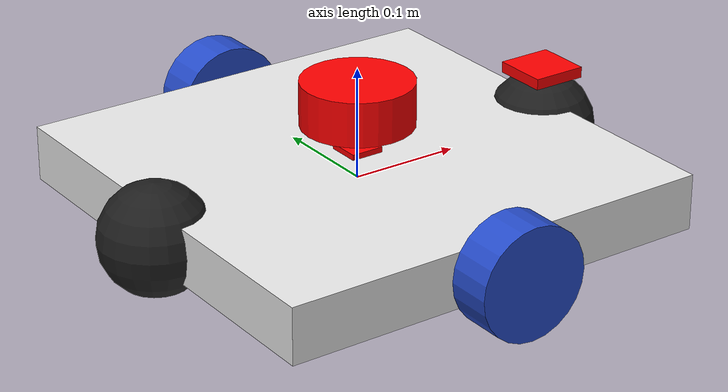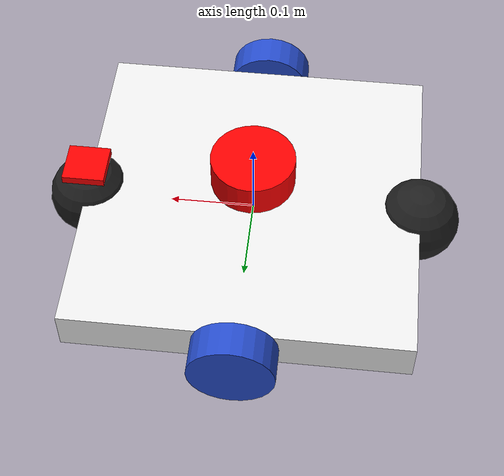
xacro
<?xml version="1.0"?>
<robot xmlns:xacro="http://www.ros.org/wiki/xacro" name="delta_robot">

    <!-- Example link -->
    <xacro:include filename="properties.xacro"/>
    <xacro:include filename="robot_core.xacro"/>

    <!-- Lidar sensor -->
    <xacro:include filename="lidar.xacro"/>

    <!-- IMU sensor -->
    <xacro:include filename="imu_sensor.xacro"/>

    <!-- Depth camera sensor -->
    <xacro:include filename="camera.xacro"/>

    <!-- ros2_control -->
    <xacro:include filename="ros2_control.xacro"/>

</robot>

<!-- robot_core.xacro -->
<robot xmlns:xacro="http://www.ros.org/wiki/xacro">

    <!-- Example link -->
    <xacro:include filename="inertial_macros.xacro"/>

    <xacro:property name="rad_w" value="0.05"/>
    <xacro:property name="le_w" value="0.04"/>
    <xacro:property name="ly" value="0.4"/>
    <xacro:property name="lx" value="0.4"/>
    <xacro:property name="lz" value="0.05"/>

    <!-- Example link -->
    <link name="base_link">
    </link>

    <joint name="base_link_joint" type="fixed">
        <parent link="base_link"/>
        <child link="chassis"/>
        <origin xyz="0 0 0"/>
    </joint>

    <!-- chassis link -->
    <link name="chassis">
        <visual>
            <origin xyz="0 0 0"/>
            <geometry>
                <box size="${lx} ${ly} ${lz}"/>
            </geometry>
            <material name="white"/>
        </visual>
        <collision>
            <origin xyz="0 0 0"/>
            <geometry>
               <box size="${lx} ${ly} ${lz}"/>
            </geometry>
        </collision>
        <xacro:inertial_box mass="5.0" x="${lx}" y="${ly}" z="${lz}">
            <origin xyz="0 0 0" rpy="0 0 0"/>
        </xacro:inertial_box>
    </link>

    <!-- left wheel joint -->
    <joint name="left_wheel_joint" type="continuous">
        <parent link="chassis"/>
        <child link="left_wheel"/>
        <origin xyz="0 ${ly/2+le_w/2} 0.0" rpy="-${pi/2} 0 0"/>
        <axis xyz="0 0 1"/>
        <dynamics damping="0.2" friction="0.0"/>
    </joint>

    <!-- left wheel link -->
    <link name="left_wheel">
        <visual>
            <geometry>
                <cylinder radius="${rad_w}" length="${le_w}"/>
            </geometry>
            <material name="blue"/>
        </visual>
        <collision>
            <geometry>
                <sphere radius="${rad_w}" />
            </geometry>
        <surface>
            <friction>
                <ode>
                <mu1>2</mu1>
                <mu2>4</mu2>
                <kp>1000000.0</kp>
                <kd>10.0</kd>
                </ode>
            </friction>
        </surface>

        </collision>
        <xacro:inertial_cylinder mass="0.5" length="${le_w}" radius="${rad_w}">
            <origin xyz="0 0 0" rpy="0 0 0"/>
        </xacro:inertial_cylinder>
    </link>

    <!-- right wheel joint -->
    <joint name="right_wheel_joint" type="continuous">
        <parent link="chassis"/>
        <child link="right_wheel"/>
        <origin xyz="0 -${ly/2+le_w/2} 0.0" rpy="${pi/2} 0 0"/>
        <axis xyz="0 0 -1"/>
        <dynamics damping="0.2" friction="0.0"/>
    </joint>

    <!-- right wheel link -->
    <link name="right_wheel">
        <visual>
            <geometry>
                <cylinder radius="${rad_w}" length="${le_w}"/>
            </geometry>
            <material name="blue"/>
        </visual>
        <collision>
            <geometry>
                <sphere radius="${rad_w}" />
            </geometry>
            <surface>
                <friction>
                <ode>
                <mu1>2</mu1>
                <mu2>4</mu2>
                <kp>1000000.0</kp>
                <kd>10.0</kd>
                </ode>
                </friction>
            </surface>
        </collision>
        <xacro:inertial_cylinder mass="0.5" length="${le_w}" radius="${rad_w}">
            <origin xyz="0 0 0" rpy="0 0 0"/>
        </xacro:inertial_cylinder>
    </link>

    <!-- caster wheel joint -->
    <joint name="caster_front_wheel_joint" type="fixed">
        <parent link="chassis"/>
        <child link="caster_front_wheel"/>
        <origin xyz="${lx/2} 0 0.0"/>
    </joint>

    <!-- left wheel link -->
    <link name="caster_front_wheel">
        <visual>
            <geometry>
                <sphere radius="0.049"/>
            </geometry>
            <material name="black"/>
        </visual>
        <collision>
            <geometry>
                <sphere radius="0.049"/>
            </geometry>
            <surface>
                <friction>
                <ode>
                    <mu>0.01</mu>
                    <mu2>0.01</mu2>
                </ode>
                </friction>
            </surface>
        </collision>
        <xacro:inertial_sphere mass="0.1" radius="0.049">
            <origin xyz="0 0 0" rpy="0 0 0"/>
        </xacro:inertial_sphere>
    </link>

     <!-- caster wheel joint -->
    <joint name="caster_rear_wheel_joint" type="fixed">
        <parent link="chassis"/>
        <child link="caster_rear_wheel"/>
        <origin xyz="${-lx/2} 0 0.0"/>
    </joint>

    <!-- left wheel link -->
    <link name="caster_rear_wheel">
        <visual>
            <geometry>
                <sphere radius="0.049"/>
            </geometry>
            <material name="black"/>
        </visual>
        <collision>
            <geometry>
                <sphere radius="0.049"/>
            </geometry>
            <surface>
                <friction>
                <ode>
                    <mu>0.01</mu>
                    <mu2>0.01</mu2>
                </ode>
                </friction>
            </surface>
        </collision>
        <xacro:inertial_sphere mass="0.1" radius="0.049">
            <origin xyz="0 0 0" rpy="0 0 0"/>
        </xacro:inertial_sphere>
    </link>

</robot>

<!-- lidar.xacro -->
<robot xmlns:xacro="http://www.ros.org/wiki/xacro" >

    <!-- Lidar link -->
    <link name="lidar_link">
        <visual>
            <geometry>
                <cylinder radius="${rad_w}" length="${le_w}"/>
            </geometry>
            <material name="red"/>
        </visual>
        <collision>
            <geometry>
                <cylinder radius="${rad_w}" length="${le_w}"/>
            </geometry>
        </collision>
        <xacro:inertial_cylinder mass="0.1" length="${le_w}" radius="${rad_w}">
            <origin xyz="0 0 0" rpy="0 0 0"/>
        </xacro:inertial_cylinder>
    </link>

    <joint name="lidar_chassis_joint" type="fixed">
        <parent link="chassis"/>
        <child link="lidar_link"/>
        <origin xyz="0 0 ${le_w/2+lz}" rpy="0 0 0"/>
    </joint>

    <gazebo reference="lidar_link">
    <sensor name="lidar" type="gpu_lidar">
        <always_on>true</always_on>
        <update_rate>30</update_rate>
        <visualize>false</visualize>
        <topic>scan</topic>
        <gz_frame_id>lidar_link</gz_frame_id>
        <pose relative_to='lidar_link'>0 0 0 0 0 0</pose>
        <lidar>
        <scan>
            <horizontal>
            <samples>720</samples>
            <min_angle>-3.14159</min_angle>
            <max_angle>3.14159</max_angle>
            </horizontal>
        </scan>
        <range>
            <min>0.12</min>
            <max>8.0</max>
        </range>
        </lidar>
    </sensor>
    </gazebo>

</robot>

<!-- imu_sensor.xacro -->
<robot xmlns:xacro="http://www.ros.org/wiki/xacro" >
        <!-- IMU link -->
    <link name="imu_link">
        <visual>
            <geometry>
                <box size="0.03 0.03 0.01"/>
            </geometry>
            <material name="red"/>
        </visual>

        <collision>
            <geometry>
                <box size="0.03 0.03 0.01"/>
            </geometry>
        </collision>

        <xacro:inertial_box mass="0.05" x="0.03" y="0.03" z="0.01">
            <origin xyz="0 0 0" rpy="0 0 0"/>
        </xacro:inertial_box>
    </link>

    <joint name="imu_chassis_joint" type="fixed">
        <parent link="chassis"/>
        <child link="imu_link"/>
        <origin xyz="0 0 ${(lz/2)}" rpy="0 0 0"/>
    </joint>

    <gazebo reference="imu_link">
        <sensor name="imu_sensor" type="imu">
            <always_on>true</always_on>
            <update_rate>30</update_rate>
            <visualize>true</visualize>
            <topic>imu</topic>
            <gz_frame_id>imu_link</gz_frame_id>
        </sensor>
    </gazebo>
</robot>

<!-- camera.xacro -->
<robot xmlns:xacro="http://www.ros.org/wiki/xacro" >

    <!-- camera link -->

    <link name="camera_link">
        <visual>
            <geometry>
                <box size="0.05 0.05 0.01"/>
            </geometry>
            <material name="red">
                <color rgba="1 0 0 1"/>
            </material>
        </visual>

        <collision>
            <geometry>
                <box size="0.05 0.05 0.01"/>
            </geometry>
        </collision>

        <xacro:inertial_cylinder mass="0.1" length="0.01" radius="0.025">
            <origin xyz="0 0 0" rpy="0 0 0"/>
        </xacro:inertial_cylinder>
    </link>

    <joint name="camera_chassis_joint" type="fixed">
        <parent link="chassis"/>
        <child link="camera_link"/>
        <origin xyz="${lx/2} 0 0.051" rpy="0 0 0"/>
    </joint>

    <joint name="camera_optical_joint" type="fixed">
        <parent link="camera_link"/>
        <child link="camera_optical_link"/>
        <origin xyz="0 0 0" rpy="0 0 0"/>
    </joint>

    <link name="camera_optical_link"></link>

    # camara de profundidad
    <gazebo reference="camera_link">
    <sensor name="camera" type="depth">
    <gz_frame_id>camera_optical_link</gz_frame_id>
        <pose>0 0 0 0 0 0</pose>
        <update_rate>30</update_rate>
        <visualize>false</visualize>

        <camera>
        <horizontal_fov>2</horizontal_fov>
        <image>
            <width>320</width>
            <height>240</height>
            <format>L16</format>
        </image>
        <clip>
            <near>0.1</near>
            <far>5</far>
        </clip>
        </camera>
    </sensor>
    </gazebo>

</robot>
